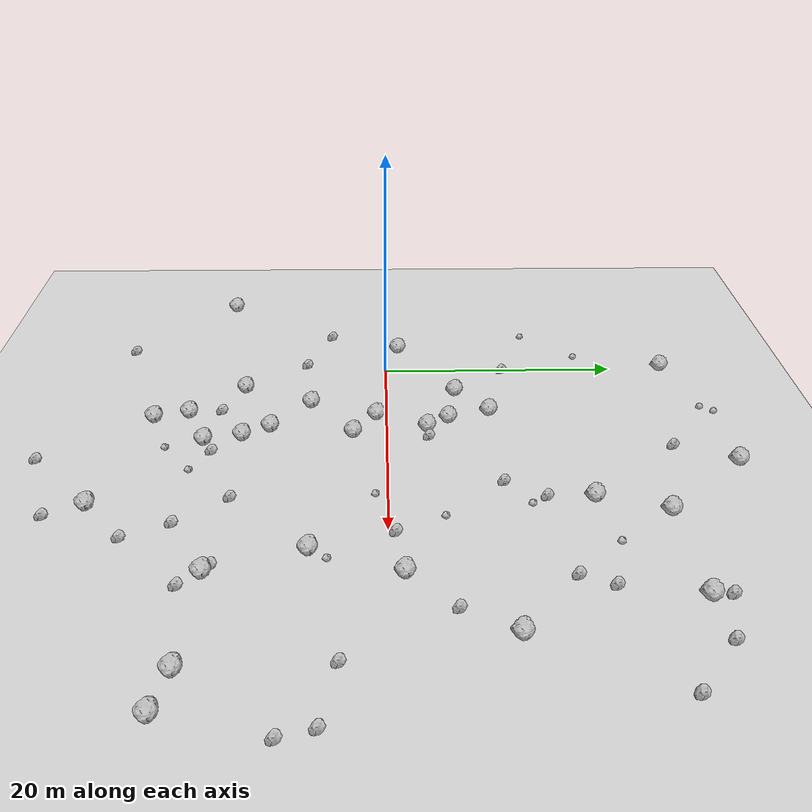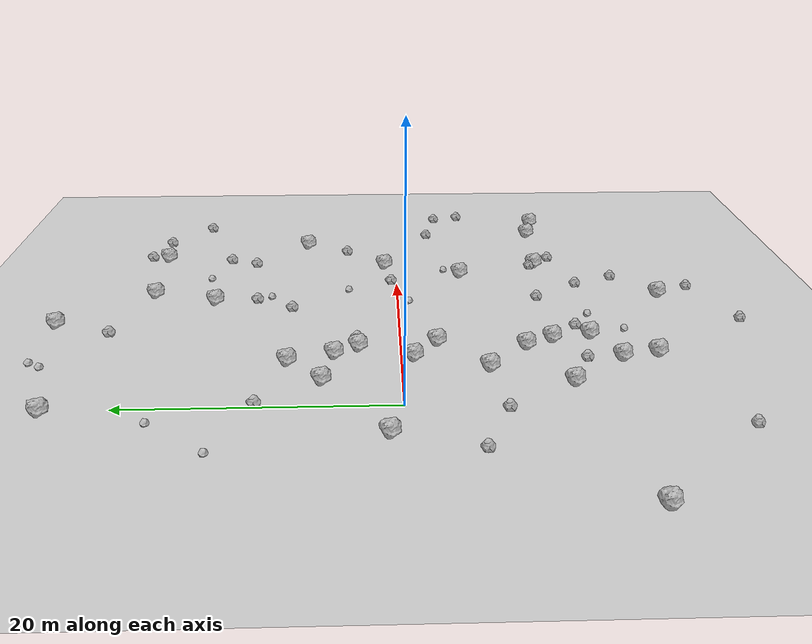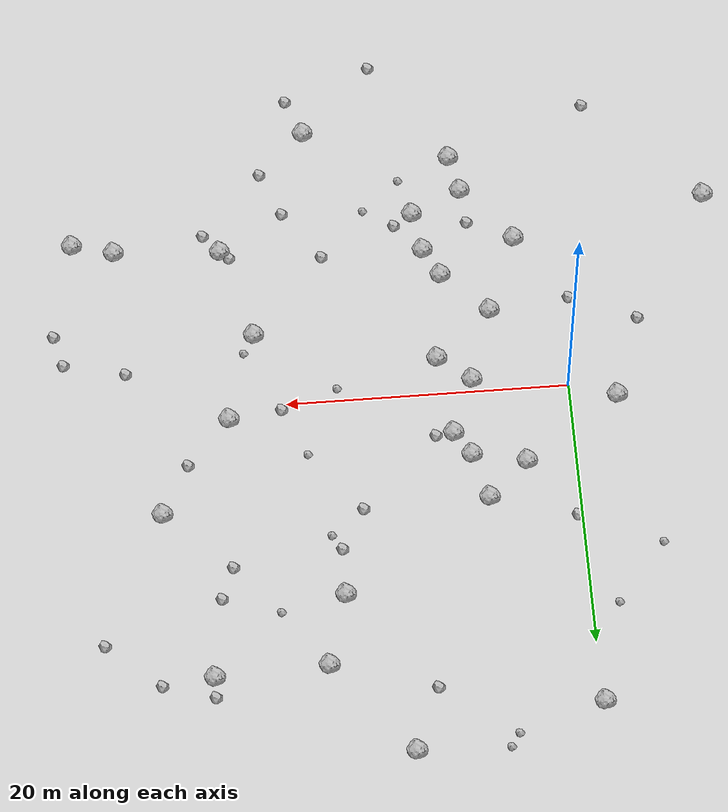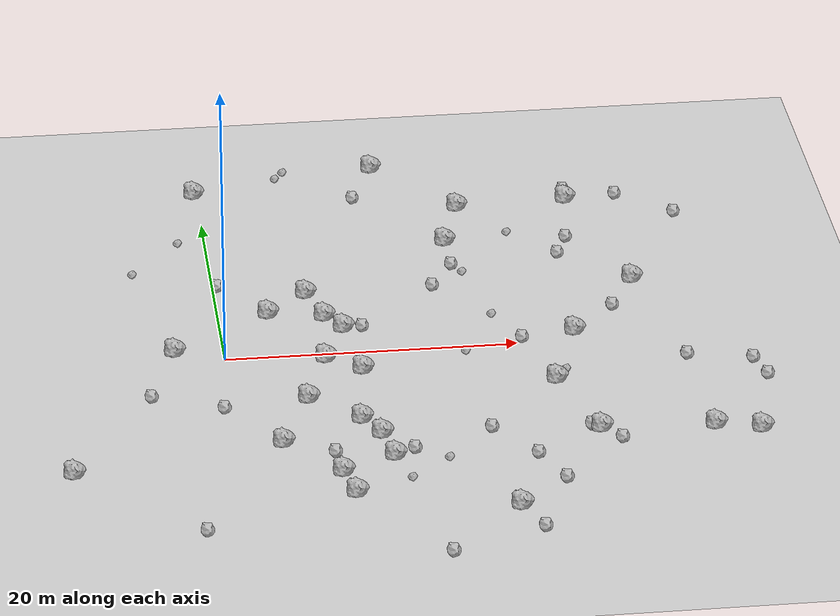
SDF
<sdf version="1.6">
 <world name="default">
  <include><uri>model://custom_ground</uri></include>
  <include><uri>model://sun</uri></include>
  <model name="rock1_0_0">
   <include><uri>model://rock1</uri><pose>9.456273186815217 -11.688796181936464 0.5 0 0 0</pose></include>
  </model>
  <model name="rock1_0_1">
   <include><uri>model://rock1</uri><pose>16.878218804001733 15.27838731786973 0.5 0 0 0</pose></include>
  </model>
  <model name="rock1_0_2">
   <include><uri>model://rock1</uri><pose>6.381972315248742 -16.44274774068992 0.5 0 0 0</pose></include>
  </model>
  <model name="rock1_0_3">
   <include><uri>model://rock1</uri><pose>7.293445581054151 5.079819756337287 0.5 0 0 0</pose></include>
  </model>
  <model name="rock1_0_4">
   <include><uri>model://rock1</uri><pose>12.91369826734644 27.325119133690244 0.5 0 0 0</pose></include>
  </model>
  <model name="rock1_0_5">
   <include><uri>model://rock1</uri><pose>9.132666323788975 -2.754366941554558 0.5 0 0 0</pose></include>
  </model>
  <model name="rock1_0_6">
   <include><uri>model://rock1</uri><pose>18.37801931052897 20.534127476050244 0.5 0 0 0</pose></include>
  </model>
  <model name="rock1_0_7">
   <include><uri>model://rock1</uri><pose>-3.328964837104042 1.1033009039148496 0.5 0 0 0</pose></include>
  </model>
  <model name="rock1_0_8">
   <include><uri>model://rock1</uri><pose>24.112519603297244 1.0547304435644698 0.5 0 0 0</pose></include>
  </model>
  <model name="rock1_0_9">
   <include><uri>model://rock1</uri><pose>8.429585677246973 3.28352805549941 0.5 0 0 0</pose></include>
  </model>
  <model name="rock1_0_10">
   <include><uri>model://rock1</uri><pose>5.089321775511657 -6.372729574876697 0.5 0 0 0</pose></include>
  </model>
  <model name="rock1_0_11">
   <include><uri>model://rock1</uri><pose>8.347047619984359 -9.528561057278633 0.5 0 0 0</pose></include>
  </model>
  <model name="rock1_0_12">
   <include><uri>model://rock1</uri><pose>31.588227256498655 -13.05245696007421 0.5 0 0 0</pose></include>
  </model>
  <model name="rock1_0_13">
   <include><uri>model://rock1</uri><pose>23.990816338459787 -12.57193776089671 0.5 0 0 0</pose></include>
  </model>
  <model name="rock1_0_14">
   <include><uri>model://rock1</uri><pose>9.995216663405817 -14.715657607923674 0.5 0 0 0</pose></include>
  </model>
  <model name="rock1_0_15">
   <include><uri>model://rock1</uri><pose>3.481509664779125 5.870696250098369 0.5 0 0 0</pose></include>
  </model>
  <model name="rock1_0_16">
   <include><uri>model://rock1</uri><pose>29.16402622712171 8.209084573943002 0.5 0 0 0</pose></include>
  </model>
  <model name="rock1_0_17">
   <include><uri>model://rock1</uri><pose>6.336525734762301 8.527845165872876 0.5 0 0 0</pose></include>
  </model>
  <model name="rock1_0_18">
   <include><uri>model://rock1</uri><pose>2.8568520097241716 -12.169391991035038 0.5 0 0 0</pose></include>
  </model>
  <model name="rock1_0_19">
   <include><uri>model://rock1</uri><pose>21.974629759424673 -5.588287762392472 0.5 0 0 0</pose></include>
  </model>
  <model name="rock1_0_20">
   <include><uri>model://rock1</uri><pose>17.39203344220683 -22.08519766136275 0.5 0 0 0</pose></include>
  </model>
  <model name="rock1_0_21">
   <include><uri>model://rock1</uri><pose>-11.105048722679172 -14.79687915960021 0.5 0 0 0</pose></include>
  </model>
  <model name="rock1_0_22">
   <include><uri>model://rock1</uri><pose>6.7992909576788705 -0.8716018166381758 0.5 0 0 0</pose></include>
  </model>
  <model name="rock1_0_23">
   <include><uri>model://rock1</uri><pose>34.5626180673482 -13.833773444420192 0.5 0 0 0</pose></include>
  </model>
  <model name="rock1_0_24">
   <include><uri>model://rock1</uri><pose>6.978674182314229 -19.2657952175756 0.5 0 0 0</pose></include>
  </model>
  <model name="rock1_0_25">
   <include><uri>model://rock1</uri><pose>-0.1570774088243425 24.602273540834283 0.5 0 0 0</pose></include>
  </model>
  <model name="rock1_0_26">
   <include><uri>model://rock1</uri><pose>26.244291648714757 20.89575630567822 0.5 0 0 0</pose></include>
  </model>
  <model name="rock2_0_0">
   <include><uri>model://rock2</uri><pose>15.172144779333578 8.767489282553846 0.3 0 0 0</pose></include>
  </model>
  <model name="rock2_0_1">
   <include><uri>model://rock2</uri><pose>31.192402929998494 -3.1204359104904285 0.3 0 0 0</pose></include>
  </model>
  <model name="rock2_0_2">
   <include><uri>model://rock2</uri><pose>16.855983082334554 11.767069334399565 0.3 0 0 0</pose></include>
  </model>
  <model name="rock2_0_3">
   <include><uri>model://rock2</uri><pose>24.489311506575106 12.630268721620055 0.3 0 0 0</pose></include>
  </model>
  <model name="rock2_0_4">
   <include><uri>model://rock2</uri><pose>6.105528943785842 -13.747268115387751 0.3 0 0 0</pose></include>
  </model>
  <model name="rock2_0_5">
   <include><uri>model://rock2</uri><pose>20.370026305977376 0.5322283803814862 0.3 0 0 0</pose></include>
  </model>
  <model name="rock2_0_6">
   <include><uri>model://rock2</uri><pose>23.36279257269294 -12.061646578117113 0.3 0 0 0</pose></include>
  </model>
  <model name="rock2_0_7">
   <include><uri>model://rock2</uri><pose>27.185180120222626 4.47135081229677 0.3 0 0 0</pose></include>
  </model>
  <model name="rock2_0_8">
   <include><uri>model://rock2</uri><pose>11.34932167390675 -13.854176106242608 0.3 0 0 0</pose></include>
  </model>
  <model name="rock2_0_9">
   <include><uri>model://rock2</uri><pose>16.732292987908693 -11.654028496498505 0.3 0 0 0</pose></include>
  </model>
  <model name="rock2_0_10">
   <include><uri>model://rock2</uri><pose>9.691135162872403 3.3904268086052696 0.3 0 0 0</pose></include>
  </model>
  <model name="rock2_0_11">
   <include><uri>model://rock2</uri><pose>12.250437913916478 -27.36101970418768 0.3 0 0 0</pose></include>
  </model>
  <model name="rock2_0_12">
   <include><uri>model://rock2</uri><pose>25.404355304838973 14.985654281102335 0.3 0 0 0</pose></include>
  </model>
  <model name="rock2_0_13">
   <include><uri>model://rock2</uri><pose>-0.6456263339581234 -7.03814797379189 0.3 0 0 0</pose></include>
  </model>
  <model name="rock2_0_14">
   <include><uri>model://rock2</uri><pose>-3.0990604946887466 -23.006832272040697 0.3 0 0 0</pose></include>
  </model>
  <model name="rock2_0_15">
   <include><uri>model://rock2</uri><pose>25.13813949679021 -14.00960891511815 0.3 0 0 0</pose></include>
  </model>
  <model name="rock2_0_16">
   <include><uri>model://rock2</uri><pose>19.34381670393978 -15.428928450674928 0.3 0 0 0</pose></include>
  </model>
  <model name="rock2_0_17">
   <include><uri>model://rock2</uri><pose>-5.373858103546965 -5.002009296055 0.3 0 0 0</pose></include>
  </model>
  <model name="rock2_0_18">
   <include><uri>model://rock2</uri><pose>33.60941727529313 17.980051811985142 0.3 0 0 0</pose></include>
  </model>
  <model name="rock2_0_19">
   <include><uri>model://rock2</uri><pose>29.84618764216068 21.268109431182864 0.3 0 0 0</pose></include>
  </model>
  <model name="rock2_0_20">
   <include><uri>model://rock2</uri><pose>26.24285261323743 22.3747472481377 0.3 0 0 0</pose></include>
  </model>
  <model name="rock2_0_21">
   <include><uri>model://rock2</uri><pose>18.499547564932264 -24.910305806606345 0.3 0 0 0</pose></include>
  </model>
  <model name="rock2_0_22">
   <include><uri>model://rock2</uri><pose>36.15911639545406 -6.503279898045758 0.3 0 0 0</pose></include>
  </model>
  <model name="rock2_0_23">
   <include><uri>model://rock2</uri><pose>0.30972231442400755 10.30511590467384 0.3 0 0 0</pose></include>
  </model>
  <model name="rock2_0_24">
   <include><uri>model://rock2</uri><pose>20.747716685516778 -18.830525031631076 0.3 0 0 0</pose></include>
  </model>
  <model name="rock2_0_25">
   <include><uri>model://rock2</uri><pose>11.068727314990511 22.725590245681865 0.3 0 0 0</pose></include>
  </model>
  <model name="rock2_0_26">
   <include><uri>model://rock2</uri><pose>35.568870098982046 -4.137860274172041 0.3 0 0 0</pose></include>
  </model>
  <model name="rock3_0_0">
   <include><uri>model://rock3</uri><pose>16.334258567376672 -0.9345502477439673 0.2 0 0 0</pose></include>
  </model>
  <model name="rock3_0_1">
   <include><uri>model://rock3</uri><pose>22.743366099234876 -4.258311976519842 0.2 0 0 0</pose></include>
  </model>
  <model name="rock3_0_2">
   <include><uri>model://rock3</uri><pose>6.468916937182424 27.430095560538746 0.2 0 0 0</pose></include>
  </model>
  <model name="rock3_0_3">
   <include><uri>model://rock3</uri><pose>17.48269475359755 10.596588348535832 0.2 0 0 0</pose></include>
  </model>
  <model name="rock3_0_4">
   <include><uri>model://rock3</uri><pose>-1.9204098800158995 17.15985401480262 0.2 0 0 0</pose></include>
  </model>
  <model name="rock3_0_5">
   <include><uri>model://rock3</uri><pose>21.360253094917155 16.223275306143172 0.2 0 0 0</pose></include>
  </model>
  <model name="rock3_0_6">
   <include><uri>model://rock3</uri><pose>10.745836889679062 -17.667056466617808 0.2 0 0 0</pose></include>
  </model>
  <model name="rock3_0_7">
   <include><uri>model://rock3</uri><pose>18.726462869271558 4.141150419744534 0.2 0 0 0</pose></include>
  </model>
  <model name="rock3_0_8">
   <include><uri>model://rock3</uri><pose>13.469702529121577 -15.31665790325247 0.2 0 0 0</pose></include>
  </model>
  <model name="rock3_0_9">
   <include><uri>model://rock3</uri><pose>-5.4456764519126555 12.771731939468346 0.2 0 0 0</pose></include>
  </model>
  <model name="rock3_0_10">
   <include><uri>model://rock3</uri><pose>5.825219647729426 26.453810218387453 0.2 0 0 0</pose></include>
  </model>
 </world>
</sdf>
